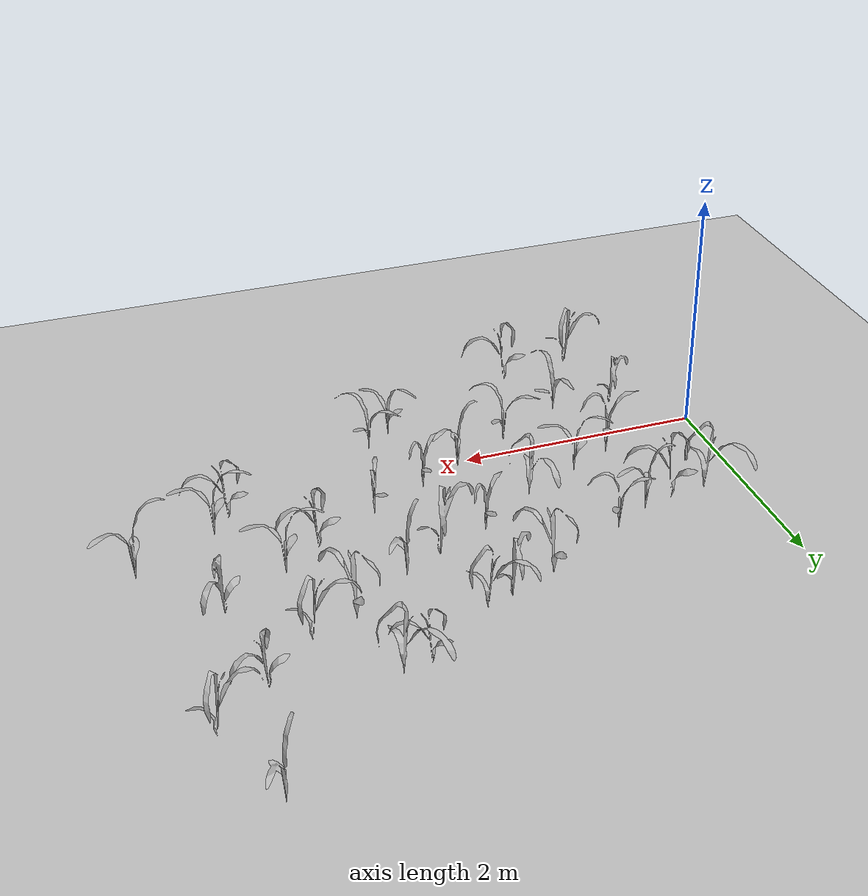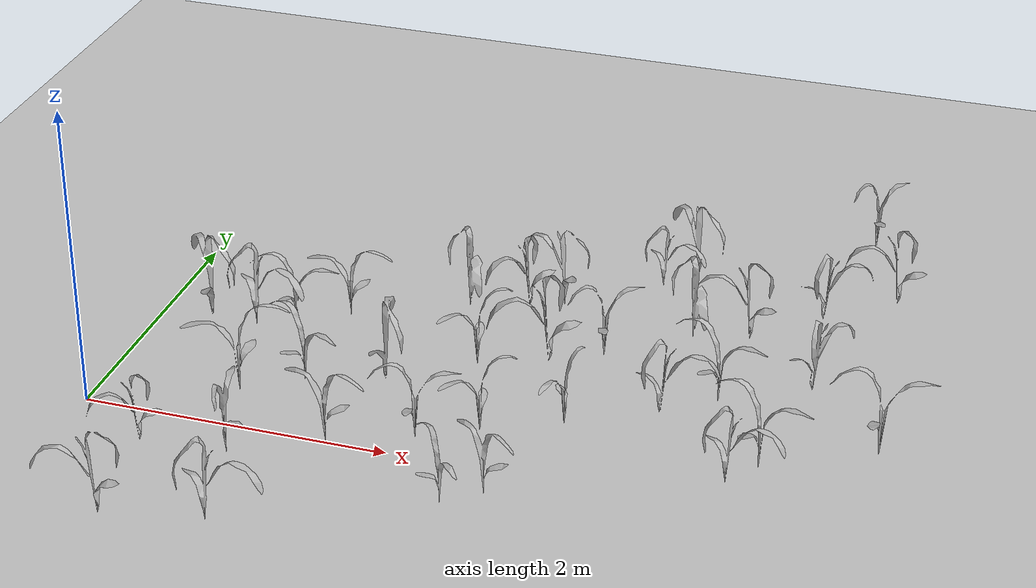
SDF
<sdf version="1.6">
 <world name="default">
  <model name="ground_plane">
   <static>1</static>
   <link name="link">
    <collision name="collision">
     <geometry><plane><normal>0 0 1</normal><size>100 100</size></plane></geometry>
     <surface>
      <contact><collide_bitmask>65535</collide_bitmask></contact>
      <friction><ode><mu>100</mu><mu2>50</mu2></ode></friction>
     </surface>
    </collision>
    <visual name="visual">
     <cast_shadows>0</cast_shadows>
     <geometry><plane><normal>0 0 1</normal><size>100 100</size></plane></geometry>
     <material>
      <script><uri>file://media/materials/scripts/gazebo.material</uri><name>Gazebo/Grey</name></script>
     </material>
    </visual>
   </link>
  </model>
  <model name="maize_01_0000">
   <pose>0.3906503861341964 1.0941904161283909 0.05 0 -0 3.0424360916871516</pose>
   <link name="maize_01_0000_link">
    <inertial>
     <mass>5.0</mass>
     <inertia>
      <ixx>0.0033416667</ixx>
      <ixy>0</ixy>
      <ixz>0</ixz>
      <iyy>0.0033416667</iyy>
      <iyz>0</iyz>
      <izz>0.000016666667</izz>
     </inertia>
     <pose>0 0 0.1 0 0 0</pose>
    </inertial>
    <collision name="collision">
     <pose>0 0 0.2 0 -0 0</pose>
     <geometry><box><size>0.02 0.02 0.4</size></box></geometry>
     <surface><friction><ode><mu>10</mu><mu2>10</mu2></ode></friction></surface>
    </collision>
    <visual name="visual">
     <geometry>
      <mesh>
       <uri>model://maize_01/meshes/maize_01.dae</uri>
       <scale>0.67784870440863 0.67784870440863 0.67784870440863</scale>
      </mesh>
     </geometry>
    </visual>
   </link>
  </model>
  <model name="maize_01_0001">
   <pose>0.5515817709031818 -0.390371866211905 0.05 0 -0 4.603411258419125</pose>
   <link name="maize_01_0001_link">
    <inertial>
     <mass>5.0</mass>
     <inertia>
      <ixx>0.0033416667</ixx>
      <ixy>0</ixy>
      <ixz>0</ixz>
      <iyy>0.0033416667</iyy>
      <iyz>0</iyz>
      <izz>0.000016666667</izz>
     </inertia>
     <pose>0 0 0.1 0 0 0</pose>
    </inertial>
    <collision name="collision">
     <pose>0 0 0.2 0 -0 0</pose>
     <geometry><box><size>0.02 0.02 0.4</size></box></geometry>
     <surface><friction><ode><mu>10</mu><mu2>10</mu2></ode></friction></surface>
    </collision>
    <visual name="visual">
     <geometry>
      <mesh>
       <uri>model://maize_01/meshes/maize_01.dae</uri>
       <scale>0.5027295008642508 0.5027295008642508 0.5027295008642508</scale>
      </mesh>
     </geometry>
    </visual>
   </link>
  </model>
  <model name="maize_01_0002">
   <pose>0.6534368972155435 -1.1702270666485124 0.05 0 -0 4.110460014467263</pose>
   <link name="maize_01_0002_link">
    <inertial>
     <mass>5.0</mass>
     <inertia>
      <ixx>0.0033416667</ixx>
      <ixy>0</ixy>
      <ixz>0</ixz>
      <iyy>0.0033416667</iyy>
      <iyz>0</iyz>
      <izz>0.000016666667</izz>
     </inertia>
     <pose>0 0 0.1 0 0 0</pose>
    </inertial>
    <collision name="collision">
     <pose>0 0 0.2 0 -0 0</pose>
     <geometry><box><size>0.02 0.02 0.4</size></box></geometry>
     <surface><friction><ode><mu>10</mu><mu2>10</mu2></ode></friction></surface>
    </collision>
    <visual name="visual">
     <geometry>
      <mesh>
       <uri>model://maize_01/meshes/maize_01.dae</uri>
       <scale>0.6111695617915642 0.6111695617915642 0.6111695617915642</scale>
      </mesh>
     </geometry>
    </visual>
   </link>
  </model>
  <model name="maize_02_0003">
   <pose>0.9037257446686866 0.3282883293863279 0.05 0 -0 5.667359774587816</pose>
   <link name="maize_02_0003_link">
    <inertial>
     <mass>5.0</mass>
     <inertia>
      <ixx>0.0033416667</ixx>
      <ixy>0</ixy>
      <ixz>0</ixz>
      <iyy>0.0033416667</iyy>
      <iyz>0</iyz>
      <izz>0.000016666667</izz>
     </inertia>
     <pose>0 0 0.1 0 0 0</pose>
    </inertial>
    <collision name="collision">
     <pose>0 0 0.2 0 -0 0</pose>
     <geometry><box><size>0.02 0.02 0.4</size></box></geometry>
     <surface><friction><ode><mu>10</mu><mu2>10</mu2></ode></friction></surface>
    </collision>
    <visual name="visual">
     <geometry>
      <mesh>
       <uri>model://maize_02/meshes/maize_02.dae</uri>
       <scale>0.6615052133947399 0.6615052133947399 0.6615052133947399</scale>
      </mesh>
     </geometry>
    </visual>
   </link>
  </model>
  <model name="maize_01_0004">
   <pose>0.6875595545300168 1.1112632524087798 0.05 0 -0 0.4967080085280435</pose>
   <link name="maize_01_0004_link">
    <inertial>
     <mass>5.0</mass>
     <inertia>
      <ixx>0.0033416667</ixx>
      <ixy>0</ixy>
      <ixz>0</ixz>
      <iyy>0.0033416667</iyy>
      <iyz>0</iyz>
      <izz>0.000016666667</izz>
     </inertia>
     <pose>0 0 0.1 0 0 0</pose>
    </inertial>
    <collision name="collision">
     <pose>0 0 0.2 0 -0 0</pose>
     <geometry><box><size>0.02 0.02 0.4</size></box></geometry>
     <surface><friction><ode><mu>10</mu><mu2>10</mu2></ode></friction></surface>
    </collision>
    <visual name="visual">
     <geometry>
      <mesh>
       <uri>model://maize_01/meshes/maize_01.dae</uri>
       <scale>0.6530112409743611 0.6530112409743611 0.6530112409743611</scale>
      </mesh>
     </geometry>
    </visual>
   </link>
  </model>
  <model name="maize_02_0005">
   <pose>1.1053254814833162 -0.34731469430018386 0.05 0 -0 3.9474850268500807</pose>
   <link name="maize_02_0005_link">
    <inertial>
     <mass>5.0</mass>
     <inertia>
      <ixx>0.0033416667</ixx>
      <ixy>0</ixy>
      <ixz>0</ixz>
      <iyy>0.0033416667</iyy>
      <iyz>0</iyz>
      <izz>0.000016666667</izz>
     </inertia>
     <pose>0 0 0.1 0 0 0</pose>
    </inertial>
    <collision name="collision">
     <pose>0 0 0.2 0 -0 0</pose>
     <geometry><box><size>0.02 0.02 0.4</size></box></geometry>
     <surface><friction><ode><mu>10</mu><mu2>10</mu2></ode></friction></surface>
    </collision>
    <visual name="visual">
     <geometry>
      <mesh>
       <uri>model://maize_02/meshes/maize_02.dae</uri>
       <scale>0.6000571639713058 0.6000571639713058 0.6000571639713058</scale>
      </mesh>
     </geometry>
    </visual>
   </link>
  </model>
  <model name="maize_01_0006">
   <pose>1.281661355598756 -1.0561770014182132 0.05 0 -0 0.7080012229232223</pose>
   <link name="maize_01_0006_link">
    <inertial>
     <mass>5.0</mass>
     <inertia>
      <ixx>0.0033416667</ixx>
      <ixy>0</ixy>
      <ixz>0</ixz>
      <iyy>0.0033416667</iyy>
      <iyz>0</iyz>
      <izz>0.000016666667</izz>
     </inertia>
     <pose>0 0 0.1 0 0 0</pose>
    </inertial>
    <collision name="collision">
     <pose>0 0 0.2 0 -0 0</pose>
     <geometry><box><size>0.02 0.02 0.4</size></box></geometry>
     <surface><friction><ode><mu>10</mu><mu2>10</mu2></ode></friction></surface>
    </collision>
    <visual name="visual">
     <geometry>
      <mesh>
       <uri>model://maize_01/meshes/maize_01.dae</uri>
       <scale>0.6288869688617147 0.6288869688617147 0.6288869688617147</scale>
      </mesh>
     </geometry>
    </visual>
   </link>
  </model>
  <model name="maize_02_0007">
   <pose>1.2696388292588123 0.5186154928203635 0.05 0 -0 1.7338231067781802</pose>
   <link name="maize_02_0007_link">
    <inertial>
     <mass>5.0</mass>
     <inertia>
      <ixx>0.0033416667</ixx>
      <ixy>0</ixy>
      <ixz>0</ixz>
      <iyy>0.0033416667</iyy>
      <iyz>0</iyz>
      <izz>0.000016666667</izz>
     </inertia>
     <pose>0 0 0.1 0 0 0</pose>
    </inertial>
    <collision name="collision">
     <pose>0 0 0.2 0 -0 0</pose>
     <geometry><box><size>0.02 0.02 0.4</size></box></geometry>
     <surface><friction><ode><mu>10</mu><mu2>10</mu2></ode></friction></surface>
    </collision>
    <visual name="visual">
     <geometry>
      <mesh>
       <uri>model://maize_02/meshes/maize_02.dae</uri>
       <scale>0.5775966646368987 0.5775966646368987 0.5775966646368987</scale>
      </mesh>
     </geometry>
    </visual>
   </link>
  </model>
  <model name="maize_02_0008">
   <pose>0.9436205945427015 1.1843774074831916 0.05 0 -0 2.4081954604851514</pose>
   <link name="maize_02_0008_link">
    <inertial>
     <mass>5.0</mass>
     <inertia>
      <ixx>0.0033416667</ixx>
      <ixy>0</ixy>
      <ixz>0</ixz>
      <iyy>0.0033416667</iyy>
      <iyz>0</iyz>
      <izz>0.000016666667</izz>
     </inertia>
     <pose>0 0 0.1 0 0 0</pose>
    </inertial>
    <collision name="collision">
     <pose>0 0 0.2 0 -0 0</pose>
     <geometry><box><size>0.02 0.02 0.4</size></box></geometry>
     <surface><friction><ode><mu>10</mu><mu2>10</mu2></ode></friction></surface>
    </collision>
    <visual name="visual">
     <geometry>
      <mesh>
       <uri>model://maize_02/meshes/maize_02.dae</uri>
       <scale>0.5699472859153585 0.5699472859153585 0.5699472859153585</scale>
      </mesh>
     </geometry>
    </visual>
   </link>
  </model>
  <model name="maize_02_0009">
   <pose>1.6473226780658463 -0.09655022891856302 0.05 0 -0 4.94809720174679</pose>
   <link name="maize_02_0009_link">
    <inertial>
     <mass>5.0</mass>
     <inertia>
      <ixx>0.0033416667</ixx>
      <ixy>0</ixy>
      <ixz>0</ixz>
      <iyy>0.0033416667</iyy>
      <iyz>0</iyz>
      <izz>0.000016666667</izz>
     </inertia>
     <pose>0 0 0.1 0 0 0</pose>
    </inertial>
    <collision name="collision">
     <pose>0 0 0.2 0 -0 0</pose>
     <geometry><box><size>0.02 0.02 0.4</size></box></geometry>
     <surface><friction><ode><mu>10</mu><mu2>10</mu2></ode></friction></surface>
    </collision>
    <visual name="visual">
     <geometry>
      <mesh>
       <uri>model://maize_02/meshes/maize_02.dae</uri>
       <scale>0.6046377324987864 0.6046377324987864 0.6046377324987864</scale>
      </mesh>
     </geometry>
    </visual>
   </link>
  </model>
  <model name="maize_01_0010">
   <pose>1.7393277898649264 0.7210873634953373 0.05 0 -0 2.614993399987889</pose>
   <link name="maize_01_0010_link">
    <inertial>
     <mass>5.0</mass>
     <inertia>
      <ixx>0.0033416667</ixx>
      <ixy>0</ixy>
      <ixz>0</ixz>
      <iyy>0.0033416667</iyy>
      <iyz>0</iyz>
      <izz>0.000016666667</izz>
     </inertia>
     <pose>0 0 0.1 0 0 0</pose>
    </inertial>
    <collision name="collision">
     <pose>0 0 0.2 0 -0 0</pose>
     <geometry><box><size>0.02 0.02 0.4</size></box></geometry>
     <surface><friction><ode><mu>10</mu><mu2>10</mu2></ode></friction></surface>
    </collision>
    <visual name="visual">
     <geometry>
      <mesh>
       <uri>model://maize_01/meshes/maize_01.dae</uri>
       <scale>0.6220417443570617 0.6220417443570617 0.6220417443570617</scale>
      </mesh>
     </geometry>
    </visual>
   </link>
  </model>
  <model name="maize_02_0011">
   <pose>1.2544440834057946 1.3702231027017293 0.05 0 -0 5.288871814829883</pose>
   <link name="maize_02_0011_link">
    <inertial>
     <mass>5.0</mass>
     <inertia>
      <ixx>0.0033416667</ixx>
      <ixy>0</ixy>
      <ixz>0</ixz>
      <iyy>0.0033416667</iyy>
      <iyz>0</iyz>
      <izz>0.000016666667</izz>
     </inertia>
     <pose>0 0 0.1 0 0 0</pose>
    </inertial>
    <collision name="collision">
     <pose>0 0 0.2 0 -0 0</pose>
     <geometry><box><size>0.02 0.02 0.4</size></box></geometry>
     <surface><friction><ode><mu>10</mu><mu2>10</mu2></ode></friction></surface>
    </collision>
    <visual name="visual">
     <geometry>
      <mesh>
       <uri>model://maize_02/meshes/maize_02.dae</uri>
       <scale>0.5764412475349001 0.5764412475349001 0.5764412475349001</scale>
      </mesh>
     </geometry>
    </visual>
   </link>
  </model>
  <model name="maize_02_0012">
   <pose>2.1356804657078694 0.14822536734168001 0.05 0 -0 2.737955239679464</pose>
   <link name="maize_02_0012_link">
    <inertial>
     <mass>5.0</mass>
     <inertia>
      <ixx>0.0033416667</ixx>
      <ixy>0</ixy>
      <ixz>0</ixz>
      <iyy>0.0033416667</iyy>
      <iyz>0</iyz>
      <izz>0.000016666667</izz>
     </inertia>
     <pose>0 0 0.1 0 0 0</pose>
    </inertial>
    <collision name="collision">
     <pose>0 0 0.2 0 -0 0</pose>
     <geometry><box><size>0.02 0.02 0.4</size></box></geometry>
     <surface><friction><ode><mu>10</mu><mu2>10</mu2></ode></friction></surface>
    </collision>
    <visual name="visual">
     <geometry>
      <mesh>
       <uri>model://maize_02/meshes/maize_02.dae</uri>
       <scale>0.5850642795302832 0.5850642795302832 0.5850642795302832</scale>
      </mesh>
     </geometry>
    </visual>
   </link>
  </model>
  <model name="maize_02_0013">
   <pose>2.521593429491164 -0.516472683149832 0.05 0 -0 1.3347260085552122</pose>
   <link name="maize_02_0013_link">
    <inertial>
     <mass>5.0</mass>
     <inertia>
      <ixx>0.0033416667</ixx>
      <ixy>0</ixy>
      <ixz>0</ixz>
      <iyy>0.0033416667</iyy>
      <iyz>0</iyz>
      <izz>0.000016666667</izz>
     </inertia>
     <pose>0 0 0.1 0 0 0</pose>
    </inertial>
    <collision name="collision">
     <pose>0 0 0.2 0 -0 0</pose>
     <geometry><box><size>0.02 0.02 0.4</size></box></geometry>
     <surface><friction><ode><mu>10</mu><mu2>10</mu2></ode></friction></surface>
    </collision>
    <visual name="visual">
     <geometry>
      <mesh>
       <uri>model://maize_02/meshes/maize_02.dae</uri>
       <scale>0.5275001462943436 0.5275001462943436 0.5275001462943436</scale>
      </mesh>
     </geometry>
    </visual>
   </link>
  </model>
  <model name="maize_02_0014">
   <pose>2.2281992092598872 1.070648200209497 0.05 0 -0 6.131660546720616</pose>
   <link name="maize_02_0014_link">
    <inertial>
     <mass>5.0</mass>
     <inertia>
      <ixx>0.0033416667</ixx>
      <ixy>0</ixy>
      <ixz>0</ixz>
      <iyy>0.0033416667</iyy>
      <iyz>0</iyz>
      <izz>0.000016666667</izz>
     </inertia>
     <pose>0 0 0.1 0 0 0</pose>
    </inertial>
    <collision name="collision">
     <pose>0 0 0.2 0 -0 0</pose>
     <geometry><box><size>0.02 0.02 0.4</size></box></geometry>
     <surface><friction><ode><mu>10</mu><mu2>10</mu2></ode></friction></surface>
    </collision>
    <visual name="visual">
     <geometry>
      <mesh>
       <uri>model://maize_02/meshes/maize_02.dae</uri>
       <scale>0.5508786357015456 0.5508786357015456 0.5508786357015456</scale>
      </mesh>
     </geometry>
    </visual>
   </link>
  </model>
  <model name="maize_01_0015">
   <pose>1.949516926842686 1.7543932494482717 0.05 0 -0 5.975872709018149</pose>
   <link name="maize_01_0015_link">
    <inertial>
     <mass>5.0</mass>
     <inertia>
      <ixx>0.0033416667</ixx>
      <ixy>0</ixy>
      <ixz>0</ixz>
      <iyy>0.0033416667</iyy>
      <iyz>0</iyz>
      <izz>0.000016666667</izz>
     </inertia>
     <pose>0 0 0.1 0 0 0</pose>
    </inertial>
    <collision name="collision">
     <pose>0 0 0.2 0 -0 0</pose>
     <geometry><box><size>0.02 0.02 0.4</size></box></geometry>
     <surface><friction><ode><mu>10</mu><mu2>10</mu2></ode></friction></surface>
    </collision>
    <visual name="visual">
     <geometry>
      <mesh>
       <uri>model://maize_01/meshes/maize_01.dae</uri>
       <scale>0.6465259724280888 0.6465259724280888 0.6465259724280888</scale>
      </mesh>
     </geometry>
    </visual>
   </link>
  </model>
  <model name="maize_02_0016">
   <pose>2.4890503552776284 0.33247659587417167 0.05 0 -0 6.093076066105277</pose>
   <link name="maize_02_0016_link">
    <inertial>
     <mass>5.0</mass>
     <inertia>
      <ixx>0.0033416667</ixx>
      <ixy>0</ixy>
      <ixz>0</ixz>
      <iyy>0.0033416667</iyy>
      <iyz>0</iyz>
      <izz>0.000016666667</izz>
     </inertia>
     <pose>0 0 0.1 0 0 0</pose>
    </inertial>
    <collision name="collision">
     <pose>0 0 0.2 0 -0 0</pose>
     <geometry><box><size>0.02 0.02 0.4</size></box></geometry>
     <surface><friction><ode><mu>10</mu><mu2>10</mu2></ode></friction></surface>
    </collision>
    <visual name="visual">
     <geometry>
      <mesh>
       <uri>model://maize_02/meshes/maize_02.dae</uri>
       <scale>0.5315655074172222 0.5315655074172222 0.5315655074172222</scale>
      </mesh>
     </geometry>
    </visual>
   </link>
  </model>
  <model name="maize_02_0017">
   <pose>2.7375041220000815 -0.3422672742953123 0.05 0 -0 4.6291913747215325</pose>
   <link name="maize_02_0017_link">
    <inertial>
     <mass>5.0</mass>
     <inertia>
      <ixx>0.0033416667</ixx>
      <ixy>0</ixy>
      <ixz>0</ixz>
      <iyy>0.0033416667</iyy>
      <iyz>0</iyz>
      <izz>0.000016666667</izz>
     </inertia>
     <pose>0 0 0.1 0 0 0</pose>
    </inertial>
    <collision name="collision">
     <pose>0 0 0.2 0 -0 0</pose>
     <geometry><box><size>0.02 0.02 0.4</size></box></geometry>
     <surface><friction><ode><mu>10</mu><mu2>10</mu2></ode></friction></surface>
    </collision>
    <visual name="visual">
     <geometry>
      <mesh>
       <uri>model://maize_02/meshes/maize_02.dae</uri>
       <scale>0.5603229692819149 0.5603229692819149 0.5603229692819149</scale>
      </mesh>
     </geometry>
    </visual>
   </link>
  </model>
  <model name="maize_01_0018">
   <pose>2.651156521702104 1.2415051627822342 0.05 0 -0 4.555210356887598</pose>
   <link name="maize_01_0018_link">
    <inertial>
     <mass>5.0</mass>
     <inertia>
      <ixx>0.0033416667</ixx>
      <ixy>0</ixy>
      <ixz>0</ixz>
      <iyy>0.0033416667</iyy>
      <iyz>0</iyz>
      <izz>0.000016666667</izz>
     </inertia>
     <pose>0 0 0.1 0 0 0</pose>
    </inertial>
    <collision name="collision">
     <pose>0 0 0.2 0 -0 0</pose>
     <geometry><box><size>0.02 0.02 0.4</size></box></geometry>
     <surface><friction><ode><mu>10</mu><mu2>10</mu2></ode></friction></surface>
    </collision>
    <visual name="visual">
     <geometry>
      <mesh>
       <uri>model://maize_01/meshes/maize_01.dae</uri>
       <scale>0.6811169366257742 0.6811169366257742 0.6811169366257742</scale>
      </mesh>
     </geometry>
    </visual>
   </link>
  </model>
  <model name="maize_01_0019">
   <pose>2.322023597308829 1.8909239201625239 0.05 0 -0 4.808320298732225</pose>
   <link name="maize_01_0019_link">
    <inertial>
     <mass>5.0</mass>
     <inertia>
      <ixx>0.0033416667</ixx>
      <ixy>0</ixy>
      <ixz>0</ixz>
      <iyy>0.0033416667</iyy>
      <iyz>0</iyz>
      <izz>0.000016666667</izz>
     </inertia>
     <pose>0 0 0.1 0 0 0</pose>
    </inertial>
    <collision name="collision">
     <pose>0 0 0.2 0 -0 0</pose>
     <geometry><box><size>0.02 0.02 0.4</size></box></geometry>
     <surface><friction><ode><mu>10</mu><mu2>10</mu2></ode></friction></surface>
    </collision>
    <visual name="visual">
     <geometry>
      <mesh>
       <uri>model://maize_01/meshes/maize_01.dae</uri>
       <scale>0.5655274052204861 0.5655274052204861 0.5655274052204861</scale>
      </mesh>
     </geometry>
    </visual>
   </link>
  </model>
  <model name="maize_02_0020">
   <pose>2.9599004914560223 0.5525120589761708 0.05 0 -0 0.28839328746539966</pose>
   <link name="maize_02_0020_link">
    <inertial>
     <mass>5.0</mass>
     <inertia>
      <ixx>0.0033416667</ixx>
      <ixy>0</ixy>
      <ixz>0</ixz>
      <iyy>0.0033416667</iyy>
      <iyz>0</iyz>
      <izz>0.000016666667</izz>
     </inertia>
     <pose>0 0 0.1 0 0 0</pose>
    </inertial>
    <collision name="collision">
     <pose>0 0 0.2 0 -0 0</pose>
     <geometry><box><size>0.02 0.02 0.4</size></box></geometry>
     <surface><friction><ode><mu>10</mu><mu2>10</mu2></ode></friction></surface>
    </collision>
    <visual name="visual">
     <geometry>
      <mesh>
       <uri>model://maize_02/meshes/maize_02.dae</uri>
       <scale>0.5145858625740877 0.5145858625740877 0.5145858625740877</scale>
      </mesh>
     </geometry>
    </visual>
   </link>
  </model>
  <model name="maize_02_0021">
   <pose>2.9718184976784623 1.4130837722674536 0.05 0 -0 3.0545142510817858</pose>
   <link name="maize_02_0021_link">
    <inertial>
     <mass>5.0</mass>
     <inertia>
      <ixx>0.0033416667</ixx>
      <ixy>0</ixy>
      <ixz>0</ixz>
      <iyy>0.0033416667</iyy>
      <iyz>0</iyz>
      <izz>0.000016666667</izz>
     </inertia>
     <pose>0 0 0.1 0 0 0</pose>
    </inertial>
    <collision name="collision">
     <pose>0 0 0.2 0 -0 0</pose>
     <geometry><box><size>0.02 0.02 0.4</size></box></geometry>
     <surface><friction><ode><mu>10</mu><mu2>10</mu2></ode></friction></surface>
    </collision>
    <visual name="visual">
     <geometry>
      <mesh>
       <uri>model://maize_02/meshes/maize_02.dae</uri>
       <scale>0.5996508771102989 0.5996508771102989 0.5996508771102989</scale>
      </mesh>
     </geometry>
    </visual>
   </link>
  </model>
  <model name="maize_01_0022">
   <pose>2.542234352776703 1.9741148003283353 0.05 0 -0 3.4628253279191092</pose>
   <link name="maize_01_0022_link">
    <inertial>
     <mass>5.0</mass>
     <inertia>
      <ixx>0.0033416667</ixx>
      <ixy>0</ixy>
      <ixz>0</ixz>
      <iyy>0.0033416667</iyy>
      <iyz>0</iyz>
      <izz>0.000016666667</izz>
     </inertia>
     <pose>0 0 0.1 0 0 0</pose>
    </inertial>
    <collision name="collision">
     <pose>0 0 0.2 0 -0 0</pose>
     <geometry><box><size>0.02 0.02 0.4</size></box></geometry>
     <surface><friction><ode><mu>10</mu><mu2>10</mu2></ode></friction></surface>
    </collision>
    <visual name="visual">
     <geometry>
      <mesh>
       <uri>model://maize_01/meshes/maize_01.dae</uri>
       <scale>0.6061441355189363 0.6061441355189363 0.6061441355189363</scale>
      </mesh>
     </geometry>
    </visual>
   </link>
  </model>
  <model name="maize_01_0023">
   <pose>3.489873220159218 0.8493553534492073 0.05 0 -0 1.0358009869210594</pose>
   <link name="maize_01_0023_link">
    <inertial>
     <mass>5.0</mass>
     <inertia>
      <ixx>0.0033416667</ixx>
      <ixy>0</ixy>
      <ixz>0</ixz>
      <iyy>0.0033416667</iyy>
      <iyz>0</iyz>
      <izz>0.000016666667</izz>
     </inertia>
     <pose>0 0 0.1 0 0 0</pose>
    </inertial>
    <collision name="collision">
     <pose>0 0 0.2 0 -0 0</pose>
     <geometry><box><size>0.02 0.02 0.4</size></box></geometry>
     <surface><friction><ode><mu>10</mu><mu2>10</mu2></ode></friction></surface>
    </collision>
    <visual name="visual">
     <geometry>
      <mesh>
       <uri>model://maize_01/meshes/maize_01.dae</uri>
       <scale>0.584020593496818 0.584020593496818 0.584020593496818</scale>
      </mesh>
     </geometry>
    </visual>
   </link>
  </model>
  <model name="maize_01_0024">
   <pose>4.047379828273896 0.23922231375552877 0.05 0 -0 0.6851542206814848</pose>
   <link name="maize_01_0024_link">
    <inertial>
     <mass>5.0</mass>
     <inertia>
      <ixx>0.0033416667</ixx>
      <ixy>0</ixy>
      <ixz>0</ixz>
      <iyy>0.0033416667</iyy>
      <iyz>0</iyz>
      <izz>0.000016666667</izz>
     </inertia>
     <pose>0 0 0.1 0 0 0</pose>
    </inertial>
    <collision name="collision">
     <pose>0 0 0.2 0 -0 0</pose>
     <geometry><box><size>0.02 0.02 0.4</size></box></geometry>
     <surface><friction><ode><mu>10</mu><mu2>10</mu2></ode></friction></surface>
    </collision>
    <visual name="visual">
     <geometry>
      <mesh>
       <uri>model://maize_01/meshes/maize_01.dae</uri>
       <scale>0.5800443365220155 0.5800443365220155 0.5800443365220155</scale>
      </mesh>
     </geometry>
    </visual>
   </link>
  </model>
  <model name="maize_01_0025">
   <pose>3.462279687654834 1.7900703254089694 0.05 0 -0 5.905350689487405</pose>
   <link name="maize_01_0025_link">
    <inertial>
     <mass>5.0</mass>
     <inertia>
      <ixx>0.0033416667</ixx>
      <ixy>0</ixy>
      <ixz>0</ixz>
      <iyy>0.0033416667</iyy>
      <iyz>0</iyz>
      <izz>0.000016666667</izz>
     </inertia>
     <pose>0 0 0.1 0 0 0</pose>
    </inertial>
    <collision name="collision">
     <pose>0 0 0.2 0 -0 0</pose>
     <geometry><box><size>0.02 0.02 0.4</size></box></geometry>
     <surface><friction><ode><mu>10</mu><mu2>10</mu2></ode></friction></surface>
    </collision>
    <visual name="visual">
     <geometry>
      <mesh>
       <uri>model://maize_01/meshes/maize_01.dae</uri>
       <scale>0.658068712293799 0.658068712293799 0.658068712293799</scale>
      </mesh>
     </geometry>
    </visual>
   </link>
  </model>
  <model name="maize_01_0026">
   <pose>3.10780085140256 2.402169679909919 0.05 0 -0 0.5519448590636261</pose>
   <link name="maize_01_0026_link">
    <inertial>
     <mass>5.0</mass>
     <inertia>
      <ixx>0.0033416667</ixx>
      <ixy>0</ixy>
      <ixz>0</ixz>
      <iyy>0.0033416667</iyy>
      <iyz>0</iyz>
      <izz>0.000016666667</izz>
     </inertia>
     <pose>0 0 0.1 0 0 0</pose>
    </inertial>
    <collision name="collision">
     <pose>0 0 0.2 0 -0 0</pose>
     <geometry><box><size>0.02 0.02 0.4</size></box></geometry>
     <surface><friction><ode><mu>10</mu><mu2>10</mu2></ode></friction></surface>
    </collision>
    <visual name="visual">
     <geometry>
      <mesh>
       <uri>model://maize_01/meshes/maize_01.dae</uri>
       <scale>0.5024001148821585 0.5024001148821585 0.5024001148821585</scale>
      </mesh>
     </geometry>
    </visual>
   </link>
  </model>
  <model name="maize_02_0027">
   <pose>3.8012030082236548 1.0842681720826082 0.05 0 -0 2.0147098821106777</pose>
   <link name="maize_02_0027_link">
    <inertial>
     <mass>5.0</mass>
     <inertia>
      <ixx>0.0033416667</ixx>
      <ixy>0</ixy>
      <ixz>0</ixz>
      <iyy>0.0033416667</iyy>
      <iyz>0</iyz>
      <izz>0.000016666667</izz>
     </inertia>
     <pose>0 0 0.1 0 0 0</pose>
    </inertial>
    <collision name="collision">
     <pose>0 0 0.2 0 -0 0</pose>
     <geometry><box><size>0.02 0.02 0.4</size></box></geometry>
     <surface><friction><ode><mu>10</mu><mu2>10</mu2></ode></friction></surface>
    </collision>
    <visual name="visual">
     <geometry>
      <mesh>
       <uri>model://maize_02/meshes/maize_02.dae</uri>
       <scale>0.6093589843163167 0.6093589843163167 0.6093589843163167</scale>
      </mesh>
     </geometry>
    </visual>
   </link>
  </model>
  <model name="maize_02_0028">
   <pose>4.19968755216005 0.452078163699329 0.05 0 -0 2.0565473337517535</pose>
   <link name="maize_02_0028_link">
    <inertial>
     <mass>5.0</mass>
     <inertia>
      <ixx>0.0033416667</ixx>
      <ixy>0</ixy>
      <ixz>0</ixz>
      <iyy>0.0033416667</iyy>
      <iyz>0</iyz>
      <izz>0.000016666667</izz>
     </inertia>
     <pose>0 0 0.1 0 0 0</pose>
    </inertial>
    <collision name="collision">
     <pose>0 0 0.2 0 -0 0</pose>
     <geometry><box><size>0.02 0.02 0.4</size></box></geometry>
     <surface><friction><ode><mu>10</mu><mu2>10</mu2></ode></friction></surface>
    </collision>
    <visual name="visual">
     <geometry>
      <mesh>
       <uri>model://maize_02/meshes/maize_02.dae</uri>
       <scale>0.6253034927847808 0.6253034927847808 0.6253034927847808</scale>
      </mesh>
     </geometry>
    </visual>
   </link>
  </model>
  <model name="maize_01_0029">
   <pose>3.81432318541326 1.8985593585177398 0.05 0 -0 4.020082010859396</pose>
   <link name="maize_01_0029_link">
    <inertial>
     <mass>5.0</mass>
     <inertia>
      <ixx>0.0033416667</ixx>
      <ixy>0</ixy>
      <ixz>0</ixz>
      <iyy>0.0033416667</iyy>
      <iyz>0</iyz>
      <izz>0.000016666667</izz>
     </inertia>
     <pose>0 0 0.1 0 0 0</pose>
    </inertial>
    <collision name="collision">
     <pose>0 0 0.2 0 -0 0</pose>
     <geometry><box><size>0.02 0.02 0.4</size></box></geometry>
     <surface><friction><ode><mu>10</mu><mu2>10</mu2></ode></friction></surface>
    </collision>
    <visual name="visual">
     <geometry>
      <mesh>
       <uri>model://maize_01/meshes/maize_01.dae</uri>
       <scale>0.613975244292793 0.613975244292793 0.613975244292793</scale>
      </mesh>
     </geometry>
    </visual>
   </link>
  </model>
  <model name="maize_01_0030">
   <pose>3.331339709816383 2.4620784243587166 0.05 0 -0 3.0100959707617725</pose>
   <link name="maize_01_0030_link">
    <inertial>
     <mass>5.0</mass>
     <inertia>
      <ixx>0.0033416667</ixx>
      <ixy>0</ixy>
      <ixz>0</ixz>
      <iyy>0.0033416667</iyy>
      <iyz>0</iyz>
      <izz>0.000016666667</izz>
     </inertia>
     <pose>0 0 0.1 0 0 0</pose>
    </inertial>
    <collision name="collision">
     <pose>0 0 0.2 0 -0 0</pose>
     <geometry><box><size>0.02 0.02 0.4</size></box></geometry>
     <surface><friction><ode><mu>10</mu><mu2>10</mu2></ode></friction></surface>
    </collision>
    <visual name="visual">
     <geometry>
      <mesh>
       <uri>model://maize_01/meshes/maize_01.dae</uri>
       <scale>0.6720729560431616 0.6720729560431616 0.6720729560431616</scale>
      </mesh>
     </geometry>
    </visual>
   </link>
  </model>
  <model name="maize_01_0031">
   <pose>4.332515377387643 1.4098711547283245 0.05 0 -0 1.757153079909286</pose>
   <link name="maize_01_0031_link">
    <inertial>
     <mass>5.0</mass>
     <inertia>
      <ixx>0.0033416667</ixx>
      <ixy>0</ixy>
      <ixz>0</ixz>
      <iyy>0.0033416667</iyy>
      <iyz>0</iyz>
      <izz>0.000016666667</izz>
     </inertia>
     <pose>0 0 0.1 0 0 0</pose>
    </inertial>
    <collision name="collision">
     <pose>0 0 0.2 0 -0 0</pose>
     <geometry><box><size>0.02 0.02 0.4</size></box></geometry>
     <surface><friction><ode><mu>10</mu><mu2>10</mu2></ode></friction></surface>
    </collision>
    <visual name="visual">
     <geometry>
      <mesh>
       <uri>model://maize_01/meshes/maize_01.dae</uri>
       <scale>0.5573014963681552 0.5573014963681552 0.5573014963681552</scale>
      </mesh>
     </geometry>
    </visual>
   </link>
  </model>
  <model name="maize_02_0032">
   <pose>4.859590877642029 0.8064933506026067 0.05 0 -0 2.5973756348950037</pose>
   <link name="maize_02_0032_link">
    <inertial>
     <mass>5.0</mass>
     <inertia>
      <ixx>0.0033416667</ixx>
      <ixy>0</ixy>
      <ixz>0</ixz>
      <iyy>0.0033416667</iyy>
      <iyz>0</iyz>
      <izz>0.000016666667</izz>
     </inertia>
     <pose>0 0 0.1 0 0 0</pose>
    </inertial>
    <collision name="collision">
     <pose>0 0 0.2 0 -0 0</pose>
     <geometry><box><size>0.02 0.02 0.4</size></box></geometry>
     <surface><friction><ode><mu>10</mu><mu2>10</mu2></ode></friction></surface>
    </collision>
    <visual name="visual">
     <geometry>
      <mesh>
       <uri>model://maize_02/meshes/maize_02.dae</uri>
       <scale>0.6738526575826701 0.6738526575826701 0.6738526575826701</scale>
      </mesh>
     </geometry>
    </visual>
   </link>
  </model>
  <model name="maize_01_0033">
   <pose>4.225841059403212 2.288848529619568 0.05 0 -0 1.3169442561918367</pose>
   <link name="maize_01_0033_link">
    <inertial>
     <mass>5.0</mass>
     <inertia>
      <ixx>0.0033416667</ixx>
      <ixy>0</ixy>
      <ixz>0</ixz>
      <iyy>0.0033416667</iyy>
      <iyz>0</iyz>
      <izz>0.000016666667</izz>
     </inertia>
     <pose>0 0 0.1 0 0 0</pose>
    </inertial>
    <collision name="collision">
     <pose>0 0 0.2 0 -0 0</pose>
     <geometry><box><size>0.02 0.02 0.4</size></box></geometry>
     <surface><friction><ode><mu>10</mu><mu2>10</mu2></ode></friction></surface>
    </collision>
    <visual name="visual">
     <geometry>
      <mesh>
       <uri>model://maize_01/meshes/maize_01.dae</uri>
       <scale>0.5379990391688103 0.5379990391688103 0.5379990391688103</scale>
      </mesh>
     </geometry>
    </visual>
   </link>
  </model>
  <model name="maize_01_0035">
   <pose>4.648873566130375 2.642791740752094 0.05 0 -0 4.281673387435433</pose>
   <link name="maize_01_0035_link">
    <inertial>
     <mass>5.0</mass>
     <inertia>
      <ixx>0.0033416667</ixx>
      <ixy>0</ixy>
      <ixz>0</ixz>
      <iyy>0.0033416667</iyy>
      <iyz>0</iyz>
      <izz>0.000016666667</izz>
     </inertia>
     <pose>0 0 0.1 0 0 0</pose>
    </inertial>
    <collision name="collision">
     <pose>0 0 0.2 0 -0 0</pose>
     <geometry><box><size>0.02 0.02 0.4</size></box></geometry>
     <surface><friction><ode><mu>10</mu><mu2>10</mu2></ode></friction></surface>
    </collision>
    <visual name="visual">
     <geometry>
      <mesh>
       <uri>model://maize_01/meshes/maize_01.dae</uri>
       <scale>0.6033513892190356 0.6033513892190356 0.6033513892190356</scale>
      </mesh>
     </geometry>
    </visual>
   </link>
  </model>
  <model name="maize_02_0036">
   <pose>4.3776705277198005 3.3686137518147685 0.05 0 -0 3.1972486441166312</pose>
   <link name="maize_02_0036_link">
    <inertial>
     <mass>5.0</mass>
     <inertia>
      <ixx>0.0033416667</ixx>
      <ixy>0</ixy>
      <ixz>0</ixz>
      <iyy>0.0033416667</iyy>
      <iyz>0</iyz>
      <izz>0.000016666667</izz>
     </inertia>
     <pose>0 0 0.1 0 0 0</pose>
    </inertial>
    <collision name="collision">
     <pose>0 0 0.2 0 -0 0</pose>
     <geometry><box><size>0.02 0.02 0.4</size></box></geometry>
     <surface><friction><ode><mu>10</mu><mu2>10</mu2></ode></friction></surface>
    </collision>
    <visual name="visual">
     <geometry>
      <mesh>
       <uri>model://maize_02/meshes/maize_02.dae</uri>
       <scale>0.5899798668051078 0.5899798668051078 0.5899798668051078</scale>
      </mesh>
     </geometry>
    </visual>
   </link>
  </model>
 </world>
</sdf>
